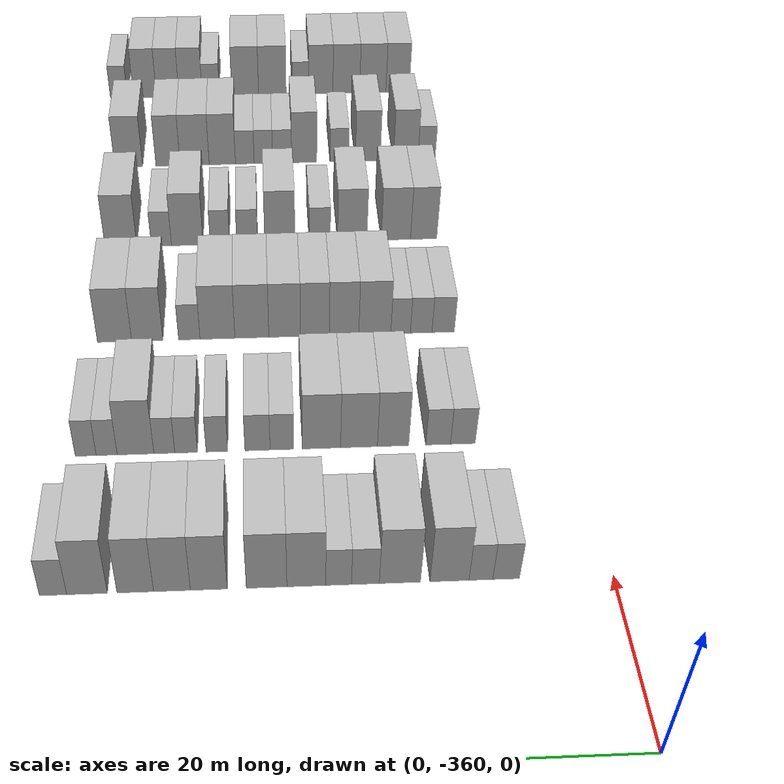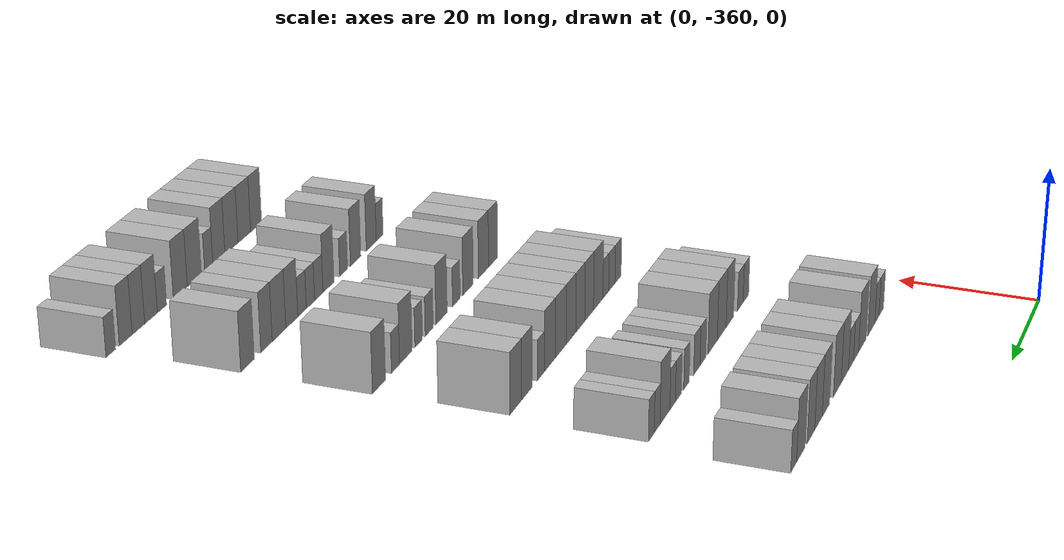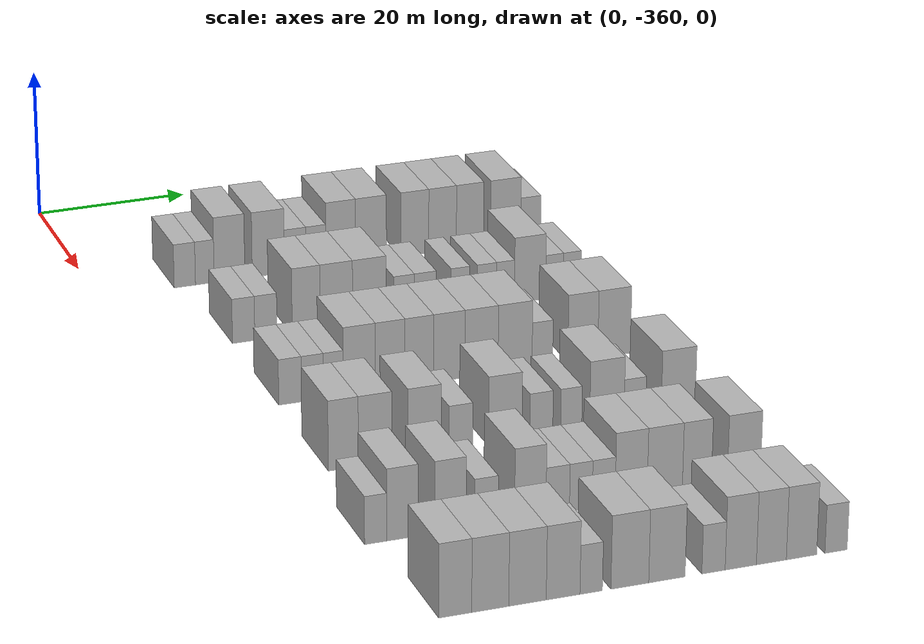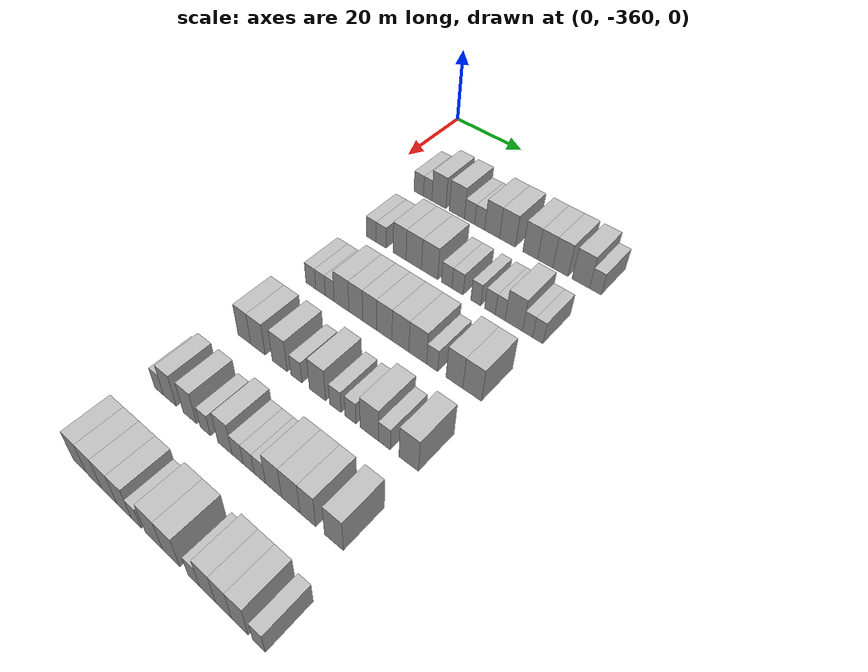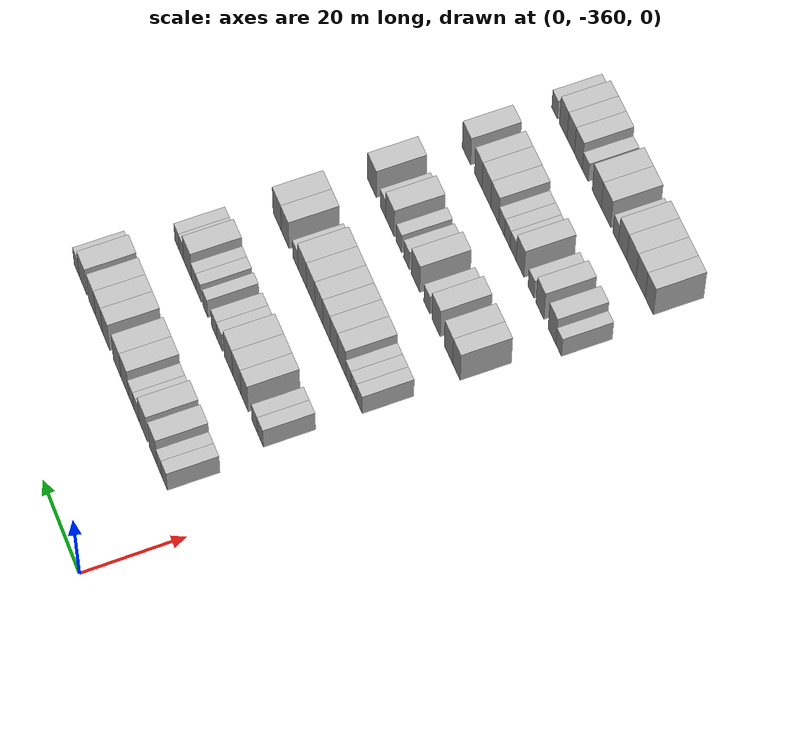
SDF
<sdf version="1.6">
 <world name="default">
  <model name="building_1">
   <static>1</static>
   <pose>25.0000 -348.5780 0 0.000000 0.000000 0.000000</pose>
   <link name="link">
    <pose>0 0 3.00 0 0 0</pose>
    <collision name="collision"><geometry><box><size>10.0000 2.8440 6.0000</size></box></geometry></collision>
    <visual name="visual">
     <cast_shadows>0</cast_shadows>
     <geometry><box><size>10.0000 2.8440 6.0000</size></box></geometry>
     <material>
      <script>
       <uri>model://HANNAS_wall/materials/scripts</uri>
       <uri>model://HANNAS_wall/materials/textures</uri>
       <name>vrc/HANNAS_wall</name>
      </script>
     </material>
    </visual>
   </link>
  </model>
  <model name="building_2">
   <static>1</static>
   <pose>25.0000 -345.8942 0 0.000000 0.000000 0.000000</pose>
   <link name="link">
    <pose>0 0 3.00 0 0 0</pose>
    <collision name="collision"><geometry><box><size>10.0000 2.5237 6.0000</size></box></geometry></collision>
    <visual name="visual">
     <cast_shadows>0</cast_shadows>
     <geometry><box><size>10.0000 2.5237 6.0000</size></box></geometry>
     <material>
      <script>
       <uri>model://HANNAS_wall/materials/scripts</uri>
       <uri>model://HANNAS_wall/materials/textures</uri>
       <name>vrc/HANNAS_wall</name>
      </script>
     </material>
    </visual>
   </link>
  </model>
  <model name="building_3">
   <static>1</static>
   <pose>25.0000 -342.5677 0 0.000000 0.000000 0.000000</pose>
   <link name="link">
    <pose>0 0 4.50 0 0 0</pose>
    <collision name="collision"><geometry><box><size>10.0000 4.1292 9.0000</size></box></geometry></collision>
    <visual name="visual">
     <cast_shadows>0</cast_shadows>
     <geometry><box><size>10.0000 4.1292 9.0000</size></box></geometry>
     <material>
      <script>
       <uri>model://HANNAS_wall/materials/scripts</uri>
       <uri>model://HANNAS_wall/materials/textures</uri>
       <name>vrc/HANNAS_wall</name>
      </script>
     </material>
    </visual>
   </link>
  </model>
  <model name="building_4">
   <static>1</static>
   <pose>25.0000 -337.3223 0 0.000000 0.000000 0.000000</pose>
   <link name="link">
    <pose>0 0 4.50 0 0 0</pose>
    <collision name="collision"><geometry><box><size>10.0000 4.3617 9.0000</size></box></geometry></collision>
    <visual name="visual">
     <cast_shadows>0</cast_shadows>
     <geometry><box><size>10.0000 4.3617 9.0000</size></box></geometry>
     <material>
      <script>
       <uri>model://HANNAS_wall/materials/scripts</uri>
       <uri>model://HANNAS_wall/materials/textures</uri>
       <name>vrc/HANNAS_wall</name>
      </script>
     </material>
    </visual>
   </link>
  </model>
  <model name="building_5">
   <static>1</static>
   <pose>25.0000 -333.6728 0 0.000000 0.000000 0.000000</pose>
   <link name="link">
    <pose>0 0 3.00 0 0 0</pose>
    <collision name="collision"><geometry><box><size>10.0000 2.9372 6.0000</size></box></geometry></collision>
    <visual name="visual">
     <cast_shadows>0</cast_shadows>
     <geometry><box><size>10.0000 2.9372 6.0000</size></box></geometry>
     <material>
      <script>
       <uri>model://HANNAS_wall/materials/scripts</uri>
       <uri>model://HANNAS_wall/materials/textures</uri>
       <name>vrc/HANNAS_wall</name>
      </script>
     </material>
    </visual>
   </link>
  </model>
  <model name="building_6">
   <static>1</static>
   <pose>25.0000 -330.8475 0 0.000000 0.000000 0.000000</pose>
   <link name="link">
    <pose>0 0 3.00 0 0 0</pose>
    <collision name="collision"><geometry><box><size>10.0000 2.7134 6.0000</size></box></geometry></collision>
    <visual name="visual">
     <cast_shadows>0</cast_shadows>
     <geometry><box><size>10.0000 2.7134 6.0000</size></box></geometry>
     <material>
      <script>
       <uri>model://HANNAS_wall/materials/scripts</uri>
       <uri>model://HANNAS_wall/materials/textures</uri>
       <name>vrc/HANNAS_wall</name>
      </script>
     </material>
    </visual>
   </link>
  </model>
  <model name="building_7">
   <static>1</static>
   <pose>25.0000 -327.4520 0 0.000000 0.000000 0.000000</pose>
   <link name="link">
    <pose>0 0 4.50 0 0 0</pose>
    <collision name="collision"><geometry><box><size>10.0000 4.0775 9.0000</size></box></geometry></collision>
    <visual name="visual">
     <cast_shadows>0</cast_shadows>
     <geometry><box><size>10.0000 4.0775 9.0000</size></box></geometry>
     <material>
      <script>
       <uri>model://HANNAS_wall/materials/scripts</uri>
       <uri>model://HANNAS_wall/materials/textures</uri>
       <name>vrc/HANNAS_wall</name>
      </script>
     </material>
    </visual>
   </link>
  </model>
  <model name="building_8">
   <static>1</static>
   <pose>25.0000 -323.2856 0 0.000000 0.000000 0.000000</pose>
   <link name="link">
    <pose>0 0 4.50 0 0 0</pose>
    <collision name="collision"><geometry><box><size>10.0000 4.2553 9.0000</size></box></geometry></collision>
    <visual name="visual">
     <cast_shadows>0</cast_shadows>
     <geometry><box><size>10.0000 4.2553 9.0000</size></box></geometry>
     <material>
      <script>
       <uri>model://HANNAS_wall/materials/scripts</uri>
       <uri>model://HANNAS_wall/materials/textures</uri>
       <name>vrc/HANNAS_wall</name>
      </script>
     </material>
    </visual>
   </link>
  </model>
  <model name="building_9">
   <static>1</static>
   <pose>25.0000 -317.2281 0 0.000000 0.000000 0.000000</pose>
   <link name="link">
    <pose>0 0 4.50 0 0 0</pose>
    <collision name="collision"><geometry><box><size>10.0000 3.8598 9.0000</size></box></geometry></collision>
    <visual name="visual">
     <cast_shadows>0</cast_shadows>
     <geometry><box><size>10.0000 3.8598 9.0000</size></box></geometry>
     <material>
      <script>
       <uri>model://HANNAS_wall/materials/scripts</uri>
       <uri>model://HANNAS_wall/materials/textures</uri>
       <name>vrc/HANNAS_wall</name>
      </script>
     </material>
    </visual>
   </link>
  </model>
  <model name="building_10">
   <static>1</static>
   <pose>25.0000 -313.3753 0 0.000000 0.000000 0.000000</pose>
   <link name="link">
    <pose>0 0 4.50 0 0 0</pose>
    <collision name="collision"><geometry><box><size>10.0000 3.8457 9.0000</size></box></geometry></collision>
    <visual name="visual">
     <cast_shadows>0</cast_shadows>
     <geometry><box><size>10.0000 3.8457 9.0000</size></box></geometry>
     <material>
      <script>
       <uri>model://HANNAS_wall/materials/scripts</uri>
       <uri>model://HANNAS_wall/materials/textures</uri>
       <name>vrc/HANNAS_wall</name>
      </script>
     </material>
    </visual>
   </link>
  </model>
  <model name="building_11">
   <static>1</static>
   <pose>25.0000 -309.5470 0 0.000000 0.000000 0.000000</pose>
   <link name="link">
    <pose>0 0 4.50 0 0 0</pose>
    <collision name="collision"><geometry><box><size>10.0000 3.8109 9.0000</size></box></geometry></collision>
    <visual name="visual">
     <cast_shadows>0</cast_shadows>
     <geometry><box><size>10.0000 3.8109 9.0000</size></box></geometry>
     <material>
      <script>
       <uri>model://HANNAS_wall/materials/scripts</uri>
       <uri>model://HANNAS_wall/materials/textures</uri>
       <name>vrc/HANNAS_wall</name>
      </script>
     </material>
    </visual>
   </link>
  </model>
  <model name="building_12">
   <static>1</static>
   <pose>25.0000 -304.5238 0 0.000000 0.000000 0.000000</pose>
   <link name="link">
    <pose>0 0 4.50 0 0 0</pose>
    <collision name="collision"><geometry><box><size>10.0000 4.2355 9.0000</size></box></geometry></collision>
    <visual name="visual">
     <cast_shadows>0</cast_shadows>
     <geometry><box><size>10.0000 4.2355 9.0000</size></box></geometry>
     <material>
      <script>
       <uri>model://HANNAS_wall/materials/scripts</uri>
       <uri>model://HANNAS_wall/materials/textures</uri>
       <name>vrc/HANNAS_wall</name>
      </script>
     </material>
    </visual>
   </link>
  </model>
  <model name="building_13">
   <static>1</static>
   <pose>25.0000 -300.9921 0 0.000000 0.000000 0.000000</pose>
   <link name="link">
    <pose>0 0 3.00 0 0 0</pose>
    <collision name="collision"><geometry><box><size>10.0000 2.8278 6.0000</size></box></geometry></collision>
    <visual name="visual">
     <cast_shadows>0</cast_shadows>
     <geometry><box><size>10.0000 2.8278 6.0000</size></box></geometry>
     <material>
      <script>
       <uri>model://HANNAS_wall/materials/scripts</uri>
       <uri>model://HANNAS_wall/materials/textures</uri>
       <name>vrc/HANNAS_wall</name>
      </script>
     </material>
    </visual>
   </link>
  </model>
  <model name="building_163">
   <static>1</static>
   <pose>44.0000 -346.5431 0 0.000000 0.000000 0.000000</pose>
   <link name="link">
    <pose>0 0 3.00 0 0 0</pose>
    <collision name="collision"><geometry><box><size>10.0000 2.9139 6.0000</size></box></geometry></collision>
    <visual name="visual">
     <cast_shadows>0</cast_shadows>
     <geometry><box><size>10.0000 2.9139 6.0000</size></box></geometry>
     <material>
      <script>
       <uri>model://HANNAS_wall/materials/scripts</uri>
       <uri>model://HANNAS_wall/materials/textures</uri>
       <name>vrc/HANNAS_wall</name>
      </script>
     </material>
    </visual>
   </link>
  </model>
  <model name="building_164">
   <static>1</static>
   <pose>44.0000 -343.6368 0 0.000000 0.000000 0.000000</pose>
   <link name="link">
    <pose>0 0 3.00 0 0 0</pose>
    <collision name="collision"><geometry><box><size>10.0000 2.8988 6.0000</size></box></geometry></collision>
    <visual name="visual">
     <cast_shadows>0</cast_shadows>
     <geometry><box><size>10.0000 2.8988 6.0000</size></box></geometry>
     <material>
      <script>
       <uri>model://HANNAS_wall/materials/scripts</uri>
       <uri>model://HANNAS_wall/materials/textures</uri>
       <name>vrc/HANNAS_wall</name>
      </script>
     </material>
    </visual>
   </link>
  </model>
  <model name="building_165">
   <static>1</static>
   <pose>44.0000 -338.3490 0 0.000000 0.000000 0.000000</pose>
   <link name="link">
    <pose>0 0 4.50 0 0 0</pose>
    <collision name="collision"><geometry><box><size>10.0000 3.6767 9.0000</size></box></geometry></collision>
    <visual name="visual">
     <cast_shadows>0</cast_shadows>
     <geometry><box><size>10.0000 3.6767 9.0000</size></box></geometry>
     <material>
      <script>
       <uri>model://HANNAS_wall/materials/scripts</uri>
       <uri>model://HANNAS_wall/materials/textures</uri>
       <name>vrc/HANNAS_wall</name>
      </script>
     </material>
    </visual>
   </link>
  </model>
  <model name="building_166">
   <static>1</static>
   <pose>44.0000 -334.3628 0 0.000000 0.000000 0.000000</pose>
   <link name="link">
    <pose>0 0 4.50 0 0 0</pose>
    <collision name="collision"><geometry><box><size>10.0000 4.2958 9.0000</size></box></geometry></collision>
    <visual name="visual">
     <cast_shadows>0</cast_shadows>
     <geometry><box><size>10.0000 4.2958 9.0000</size></box></geometry>
     <material>
      <script>
       <uri>model://HANNAS_wall/materials/scripts</uri>
       <uri>model://HANNAS_wall/materials/textures</uri>
       <name>vrc/HANNAS_wall</name>
      </script>
     </material>
    </visual>
   </link>
  </model>
  <model name="building_167">
   <static>1</static>
   <pose>44.0000 -329.9841 0 0.000000 0.000000 0.000000</pose>
   <link name="link">
    <pose>0 0 4.50 0 0 0</pose>
    <collision name="collision"><geometry><box><size>10.0000 4.4615 9.0000</size></box></geometry></collision>
    <visual name="visual">
     <cast_shadows>0</cast_shadows>
     <geometry><box><size>10.0000 4.4615 9.0000</size></box></geometry>
     <material>
      <script>
       <uri>model://HANNAS_wall/materials/scripts</uri>
       <uri>model://HANNAS_wall/materials/textures</uri>
       <name>vrc/HANNAS_wall</name>
      </script>
     </material>
    </visual>
   </link>
  </model>
  <model name="building_168">
   <static>1</static>
   <pose>44.0000 -325.3699 0 0.000000 0.000000 0.000000</pose>
   <link name="link">
    <pose>0 0 3.00 0 0 0</pose>
    <collision name="collision"><geometry><box><size>10.0000 2.7669 6.0000</size></box></geometry></collision>
    <visual name="visual">
     <cast_shadows>0</cast_shadows>
     <geometry><box><size>10.0000 2.7669 6.0000</size></box></geometry>
     <material>
      <script>
       <uri>model://HANNAS_wall/materials/scripts</uri>
       <uri>model://HANNAS_wall/materials/textures</uri>
       <name>vrc/HANNAS_wall</name>
      </script>
     </material>
    </visual>
   </link>
  </model>
  <model name="building_169">
   <static>1</static>
   <pose>44.0000 -322.5254 0 0.000000 0.000000 0.000000</pose>
   <link name="link">
    <pose>0 0 3.00 0 0 0</pose>
    <collision name="collision"><geometry><box><size>10.0000 2.9221 6.0000</size></box></geometry></collision>
    <visual name="visual">
     <cast_shadows>0</cast_shadows>
     <geometry><box><size>10.0000 2.9221 6.0000</size></box></geometry>
     <material>
      <script>
       <uri>model://HANNAS_wall/materials/scripts</uri>
       <uri>model://HANNAS_wall/materials/textures</uri>
       <name>vrc/HANNAS_wall</name>
      </script>
     </material>
    </visual>
   </link>
  </model>
  <model name="building_170">
   <static>1</static>
   <pose>44.0000 -317.8067 0 0.000000 0.000000 0.000000</pose>
   <link name="link">
    <pose>0 0 3.00 0 0 0</pose>
    <collision name="collision"><geometry><box><size>10.0000 2.5152 6.0000</size></box></geometry></collision>
    <visual name="visual">
     <cast_shadows>0</cast_shadows>
     <geometry><box><size>10.0000 2.5152 6.0000</size></box></geometry>
     <material>
      <script>
       <uri>model://HANNAS_wall/materials/scripts</uri>
       <uri>model://HANNAS_wall/materials/textures</uri>
       <name>vrc/HANNAS_wall</name>
      </script>
     </material>
    </visual>
   </link>
  </model>
  <model name="building_171">
   <static>1</static>
   <pose>44.0000 -314.2311 0 0.000000 0.000000 0.000000</pose>
   <link name="link">
    <pose>0 0 3.00 0 0 0</pose>
    <collision name="collision"><geometry><box><size>10.0000 2.6361 6.0000</size></box></geometry></collision>
    <visual name="visual">
     <cast_shadows>0</cast_shadows>
     <geometry><box><size>10.0000 2.6361 6.0000</size></box></geometry>
     <material>
      <script>
       <uri>model://HANNAS_wall/materials/scripts</uri>
       <uri>model://HANNAS_wall/materials/textures</uri>
       <name>vrc/HANNAS_wall</name>
      </script>
     </material>
    </visual>
   </link>
  </model>
  <model name="building_172">
   <static>1</static>
   <pose>44.0000 -311.7024 0 0.000000 0.000000 0.000000</pose>
   <link name="link">
    <pose>0 0 3.00 0 0 0</pose>
    <collision name="collision"><geometry><box><size>10.0000 2.4212 6.0000</size></box></geometry></collision>
    <visual name="visual">
     <cast_shadows>0</cast_shadows>
     <geometry><box><size>10.0000 2.4212 6.0000</size></box></geometry>
     <material>
      <script>
       <uri>model://HANNAS_wall/materials/scripts</uri>
       <uri>model://HANNAS_wall/materials/textures</uri>
       <name>vrc/HANNAS_wall</name>
      </script>
     </material>
    </visual>
   </link>
  </model>
  <model name="building_173">
   <static>1</static>
   <pose>44.0000 -308.3730 0 0.000000 0.000000 0.000000</pose>
   <link name="link">
    <pose>0 0 4.50 0 0 0</pose>
    <collision name="collision"><geometry><box><size>10.0000 4.2376 9.0000</size></box></geometry></collision>
    <visual name="visual">
     <cast_shadows>0</cast_shadows>
     <geometry><box><size>10.0000 4.2376 9.0000</size></box></geometry>
     <material>
      <script>
       <uri>model://HANNAS_wall/materials/scripts</uri>
       <uri>model://HANNAS_wall/materials/textures</uri>
       <name>vrc/HANNAS_wall</name>
      </script>
     </material>
    </visual>
   </link>
  </model>
  <model name="building_174">
   <static>1</static>
   <pose>44.0000 -305.0393 0 0.000000 0.000000 0.000000</pose>
   <link name="link">
    <pose>0 0 3.00 0 0 0</pose>
    <collision name="collision"><geometry><box><size>10.0000 2.4298 6.0000</size></box></geometry></collision>
    <visual name="visual">
     <cast_shadows>0</cast_shadows>
     <geometry><box><size>10.0000 2.4298 6.0000</size></box></geometry>
     <material>
      <script>
       <uri>model://HANNAS_wall/materials/scripts</uri>
       <uri>model://HANNAS_wall/materials/textures</uri>
       <name>vrc/HANNAS_wall</name>
      </script>
     </material>
    </visual>
   </link>
  </model>
  <model name="building_175">
   <static>1</static>
   <pose>44.0000 -302.6167 0 0.000000 0.000000 0.000000</pose>
   <link name="link">
    <pose>0 0 3.00 0 0 0</pose>
    <collision name="collision"><geometry><box><size>10.0000 2.4154 6.0000</size></box></geometry></collision>
    <visual name="visual">
     <cast_shadows>0</cast_shadows>
     <geometry><box><size>10.0000 2.4154 6.0000</size></box></geometry>
     <material>
      <script>
       <uri>model://HANNAS_wall/materials/scripts</uri>
       <uri>model://HANNAS_wall/materials/textures</uri>
       <name>vrc/HANNAS_wall</name>
      </script>
     </material>
    </visual>
   </link>
  </model>
  <model name="building_349">
   <static>1</static>
   <pose>63.0000 -346.5589 0 0.000000 0.000000 0.000000</pose>
   <link name="link">
    <pose>0 0 3.00 0 0 0</pose>
    <collision name="collision"><geometry><box><size>10.0000 2.8822 6.0000</size></box></geometry></collision>
    <visual name="visual">
     <cast_shadows>0</cast_shadows>
     <geometry><box><size>10.0000 2.8822 6.0000</size></box></geometry>
     <material>
      <script>
       <uri>model://HANNAS_wall/materials/scripts</uri>
       <uri>model://HANNAS_wall/materials/textures</uri>
       <name>vrc/HANNAS_wall</name>
      </script>
     </material>
    </visual>
   </link>
  </model>
  <model name="building_350">
   <static>1</static>
   <pose>63.0000 -343.7239 0 0.000000 0.000000 0.000000</pose>
   <link name="link">
    <pose>0 0 3.00 0 0 0</pose>
    <collision name="collision"><geometry><box><size>10.0000 2.7879 6.0000</size></box></geometry></collision>
    <visual name="visual">
     <cast_shadows>0</cast_shadows>
     <geometry><box><size>10.0000 2.7879 6.0000</size></box></geometry>
     <material>
      <script>
       <uri>model://HANNAS_wall/materials/scripts</uri>
       <uri>model://HANNAS_wall/materials/textures</uri>
       <name>vrc/HANNAS_wall</name>
      </script>
     </material>
    </visual>
   </link>
  </model>
  <model name="building_351">
   <static>1</static>
   <pose>63.0000 -341.0709 0 0.000000 0.000000 0.000000</pose>
   <link name="link">
    <pose>0 0 3.00 0 0 0</pose>
    <collision name="collision"><geometry><box><size>10.0000 2.5181 6.0000</size></box></geometry></collision>
    <visual name="visual">
     <cast_shadows>0</cast_shadows>
     <geometry><box><size>10.0000 2.5181 6.0000</size></box></geometry>
     <material>
      <script>
       <uri>model://HANNAS_wall/materials/scripts</uri>
       <uri>model://HANNAS_wall/materials/textures</uri>
       <name>vrc/HANNAS_wall</name>
      </script>
     </material>
    </visual>
   </link>
  </model>
  <model name="building_352">
   <static>1</static>
   <pose>63.0000 -337.7513 0 0.000000 0.000000 0.000000</pose>
   <link name="link">
    <pose>0 0 4.50 0 0 0</pose>
    <collision name="collision"><geometry><box><size>10.0000 4.1213 9.0000</size></box></geometry></collision>
    <visual name="visual">
     <cast_shadows>0</cast_shadows>
     <geometry><box><size>10.0000 4.1213 9.0000</size></box></geometry>
     <material>
      <script>
       <uri>model://HANNAS_wall/materials/scripts</uri>
       <uri>model://HANNAS_wall/materials/textures</uri>
       <name>vrc/HANNAS_wall</name>
      </script>
     </material>
    </visual>
   </link>
  </model>
  <model name="building_353">
   <static>1</static>
   <pose>63.0000 -333.7960 0 0.000000 0.000000 0.000000</pose>
   <link name="link">
    <pose>0 0 4.50 0 0 0</pose>
    <collision name="collision"><geometry><box><size>10.0000 3.7892 9.0000</size></box></geometry></collision>
    <visual name="visual">
     <cast_shadows>0</cast_shadows>
     <geometry><box><size>10.0000 3.7892 9.0000</size></box></geometry>
     <material>
      <script>
       <uri>model://HANNAS_wall/materials/scripts</uri>
       <uri>model://HANNAS_wall/materials/textures</uri>
       <name>vrc/HANNAS_wall</name>
      </script>
     </material>
    </visual>
   </link>
  </model>
  <model name="building_354">
   <static>1</static>
   <pose>63.0000 -330.0462 0 0.000000 0.000000 0.000000</pose>
   <link name="link">
    <pose>0 0 4.50 0 0 0</pose>
    <collision name="collision"><geometry><box><size>10.0000 3.7105 9.0000</size></box></geometry></collision>
    <visual name="visual">
     <cast_shadows>0</cast_shadows>
     <geometry><box><size>10.0000 3.7105 9.0000</size></box></geometry>
     <material>
      <script>
       <uri>model://HANNAS_wall/materials/scripts</uri>
       <uri>model://HANNAS_wall/materials/textures</uri>
       <name>vrc/HANNAS_wall</name>
      </script>
     </material>
    </visual>
   </link>
  </model>
  <model name="building_355">
   <static>1</static>
   <pose>63.0000 -326.1734 0 0.000000 0.000000 0.000000</pose>
   <link name="link">
    <pose>0 0 4.50 0 0 0</pose>
    <collision name="collision"><geometry><box><size>10.0000 4.0352 9.0000</size></box></geometry></collision>
    <visual name="visual">
     <cast_shadows>0</cast_shadows>
     <geometry><box><size>10.0000 4.0352 9.0000</size></box></geometry>
     <material>
      <script>
       <uri>model://HANNAS_wall/materials/scripts</uri>
       <uri>model://HANNAS_wall/materials/textures</uri>
       <name>vrc/HANNAS_wall</name>
      </script>
     </material>
    </visual>
   </link>
  </model>
  <model name="building_356">
   <static>1</static>
   <pose>63.0000 -321.9906 0 0.000000 0.000000 0.000000</pose>
   <link name="link">
    <pose>0 0 4.50 0 0 0</pose>
    <collision name="collision"><geometry><box><size>10.0000 4.3304 9.0000</size></box></geometry></collision>
    <visual name="visual">
     <cast_shadows>0</cast_shadows>
     <geometry><box><size>10.0000 4.3304 9.0000</size></box></geometry>
     <material>
      <script>
       <uri>model://HANNAS_wall/materials/scripts</uri>
       <uri>model://HANNAS_wall/materials/textures</uri>
       <name>vrc/HANNAS_wall</name>
      </script>
     </material>
    </visual>
   </link>
  </model>
  <model name="building_357">
   <static>1</static>
   <pose>63.0000 -317.5995 0 0.000000 0.000000 0.000000</pose>
   <link name="link">
    <pose>0 0 4.50 0 0 0</pose>
    <collision name="collision"><geometry><box><size>10.0000 4.4518 9.0000</size></box></geometry></collision>
    <visual name="visual">
     <cast_shadows>0</cast_shadows>
     <geometry><box><size>10.0000 4.4518 9.0000</size></box></geometry>
     <material>
      <script>
       <uri>model://HANNAS_wall/materials/scripts</uri>
       <uri>model://HANNAS_wall/materials/textures</uri>
       <name>vrc/HANNAS_wall</name>
      </script>
     </material>
    </visual>
   </link>
  </model>
  <model name="building_358">
   <static>1</static>
   <pose>63.0000 -314.0114 0 0.000000 0.000000 0.000000</pose>
   <link name="link">
    <pose>0 0 3.00 0 0 0</pose>
    <collision name="collision"><geometry><box><size>10.0000 2.7244 6.0000</size></box></geometry></collision>
    <visual name="visual">
     <cast_shadows>0</cast_shadows>
     <geometry><box><size>10.0000 2.7244 6.0000</size></box></geometry>
     <material>
      <script>
       <uri>model://HANNAS_wall/materials/scripts</uri>
       <uri>model://HANNAS_wall/materials/textures</uri>
       <name>vrc/HANNAS_wall</name>
      </script>
     </material>
    </visual>
   </link>
  </model>
  <model name="building_359">
   <static>1</static>
   <pose>63.0000 -308.6573 0 0.000000 0.000000 0.000000</pose>
   <link name="link">
    <pose>0 0 4.50 0 0 0</pose>
    <collision name="collision"><geometry><box><size>10.0000 3.9838 9.0000</size></box></geometry></collision>
    <visual name="visual">
     <cast_shadows>0</cast_shadows>
     <geometry><box><size>10.0000 3.9838 9.0000</size></box></geometry>
     <material>
      <script>
       <uri>model://HANNAS_wall/materials/scripts</uri>
       <uri>model://HANNAS_wall/materials/textures</uri>
       <name>vrc/HANNAS_wall</name>
      </script>
     </material>
    </visual>
   </link>
  </model>
  <model name="building_360">
   <static>1</static>
   <pose>63.0000 -304.4983 0 0.000000 0.000000 0.000000</pose>
   <link name="link">
    <pose>0 0 4.50 0 0 0</pose>
    <collision name="collision"><geometry><box><size>10.0000 4.3343 9.0000</size></box></geometry></collision>
    <visual name="visual">
     <cast_shadows>0</cast_shadows>
     <geometry><box><size>10.0000 4.3343 9.0000</size></box></geometry>
     <material>
      <script>
       <uri>model://HANNAS_wall/materials/scripts</uri>
       <uri>model://HANNAS_wall/materials/textures</uri>
       <name>vrc/HANNAS_wall</name>
      </script>
     </material>
    </visual>
   </link>
  </model>
  <model name="building_522">
   <static>1</static>
   <pose>82.0000 -346.1519 0 0.000000 0.000000 0.000000</pose>
   <link name="link">
    <pose>0 0 4.50 0 0 0</pose>
    <collision name="collision"><geometry><box><size>10.0000 3.6962 9.0000</size></box></geometry></collision>
    <visual name="visual">
     <cast_shadows>0</cast_shadows>
     <geometry><box><size>10.0000 3.6962 9.0000</size></box></geometry>
     <material>
      <script>
       <uri>model://HANNAS_wall/materials/scripts</uri>
       <uri>model://HANNAS_wall/materials/textures</uri>
       <name>vrc/HANNAS_wall</name>
      </script>
     </material>
    </visual>
   </link>
  </model>
  <model name="building_523">
   <static>1</static>
   <pose>82.0000 -342.2464 0 0.000000 0.000000 0.000000</pose>
   <link name="link">
    <pose>0 0 4.50 0 0 0</pose>
    <collision name="collision"><geometry><box><size>10.0000 4.1149 9.0000</size></box></geometry></collision>
    <visual name="visual">
     <cast_shadows>0</cast_shadows>
     <geometry><box><size>10.0000 4.1149 9.0000</size></box></geometry>
     <material>
      <script>
       <uri>model://HANNAS_wall/materials/scripts</uri>
       <uri>model://HANNAS_wall/materials/textures</uri>
       <name>vrc/HANNAS_wall</name>
      </script>
     </material>
    </visual>
   </link>
  </model>
  <model name="building_524">
   <static>1</static>
   <pose>82.0000 -336.1265 0 0.000000 0.000000 0.000000</pose>
   <link name="link">
    <pose>0 0 4.50 0 0 0</pose>
    <collision name="collision"><geometry><box><size>10.0000 4.1247 9.0000</size></box></geometry></collision>
    <visual name="visual">
     <cast_shadows>0</cast_shadows>
     <geometry><box><size>10.0000 4.1247 9.0000</size></box></geometry>
     <material>
      <script>
       <uri>model://HANNAS_wall/materials/scripts</uri>
       <uri>model://HANNAS_wall/materials/textures</uri>
       <name>vrc/HANNAS_wall</name>
      </script>
     </material>
    </visual>
   </link>
  </model>
  <model name="building_525">
   <static>1</static>
   <pose>82.0000 -331.5944 0 0.000000 0.000000 0.000000</pose>
   <link name="link">
    <pose>0 0 3.00 0 0 0</pose>
    <collision name="collision"><geometry><box><size>10.0000 2.9394 6.0000</size></box></geometry></collision>
    <visual name="visual">
     <cast_shadows>0</cast_shadows>
     <geometry><box><size>10.0000 2.9394 6.0000</size></box></geometry>
     <material>
      <script>
       <uri>model://HANNAS_wall/materials/scripts</uri>
       <uri>model://HANNAS_wall/materials/textures</uri>
       <name>vrc/HANNAS_wall</name>
      </script>
     </material>
    </visual>
   </link>
  </model>
  <model name="building_526">
   <static>1</static>
   <pose>82.0000 -326.0249 0 0.000000 0.000000 0.000000</pose>
   <link name="link">
    <pose>0 0 4.50 0 0 0</pose>
    <collision name="collision"><geometry><box><size>10.0000 4.1996 9.0000</size></box></geometry></collision>
    <visual name="visual">
     <cast_shadows>0</cast_shadows>
     <geometry><box><size>10.0000 4.1996 9.0000</size></box></geometry>
     <material>
      <script>
       <uri>model://HANNAS_wall/materials/scripts</uri>
       <uri>model://HANNAS_wall/materials/textures</uri>
       <name>vrc/HANNAS_wall</name>
      </script>
     </material>
    </visual>
   </link>
  </model>
  <model name="building_527">
   <static>1</static>
   <pose>82.0000 -321.4753 0 0.000000 0.000000 0.000000</pose>
   <link name="link">
    <pose>0 0 3.00 0 0 0</pose>
    <collision name="collision"><geometry><box><size>10.0000 2.8997 6.0000</size></box></geometry></collision>
    <visual name="visual">
     <cast_shadows>0</cast_shadows>
     <geometry><box><size>10.0000 2.8997 6.0000</size></box></geometry>
     <material>
      <script>
       <uri>model://HANNAS_wall/materials/scripts</uri>
       <uri>model://HANNAS_wall/materials/textures</uri>
       <name>vrc/HANNAS_wall</name>
      </script>
     </material>
    </visual>
   </link>
  </model>
  <model name="building_528">
   <static>1</static>
   <pose>82.0000 -317.6813 0 0.000000 0.000000 0.000000</pose>
   <link name="link">
    <pose>0 0 3.00 0 0 0</pose>
    <collision name="collision"><geometry><box><size>10.0000 2.6884 6.0000</size></box></geometry></collision>
    <visual name="visual">
     <cast_shadows>0</cast_shadows>
     <geometry><box><size>10.0000 2.6884 6.0000</size></box></geometry>
     <material>
      <script>
       <uri>model://HANNAS_wall/materials/scripts</uri>
       <uri>model://HANNAS_wall/materials/textures</uri>
       <name>vrc/HANNAS_wall</name>
      </script>
     </material>
    </visual>
   </link>
  </model>
  <model name="building_529">
   <static>1</static>
   <pose>82.0000 -313.1381 0 0.000000 0.000000 0.000000</pose>
   <link name="link">
    <pose>0 0 4.50 0 0 0</pose>
    <collision name="collision"><geometry><box><size>10.0000 4.3979 9.0000</size></box></geometry></collision>
    <visual name="visual">
     <cast_shadows>0</cast_shadows>
     <geometry><box><size>10.0000 4.3979 9.0000</size></box></geometry>
     <material>
      <script>
       <uri>model://HANNAS_wall/materials/scripts</uri>
       <uri>model://HANNAS_wall/materials/textures</uri>
       <name>vrc/HANNAS_wall</name>
      </script>
     </material>
    </visual>
   </link>
  </model>
  <model name="building_530">
   <static>1</static>
   <pose>82.0000 -309.5444 0 0.000000 0.000000 0.000000</pose>
   <link name="link">
    <pose>0 0 3.00 0 0 0</pose>
    <collision name="collision"><geometry><box><size>10.0000 2.7895 6.0000</size></box></geometry></collision>
    <visual name="visual">
     <cast_shadows>0</cast_shadows>
     <geometry><box><size>10.0000 2.7895 6.0000</size></box></geometry>
     <material>
      <script>
       <uri>model://HANNAS_wall/materials/scripts</uri>
       <uri>model://HANNAS_wall/materials/textures</uri>
       <name>vrc/HANNAS_wall</name>
      </script>
     </material>
    </visual>
   </link>
  </model>
  <model name="building_531">
   <static>1</static>
   <pose>82.0000 -303.9486 0 0.000000 0.000000 0.000000</pose>
   <link name="link">
    <pose>0 0 4.50 0 0 0</pose>
    <collision name="collision"><geometry><box><size>10.0000 4.4021 9.0000</size></box></geometry></collision>
    <visual name="visual">
     <cast_shadows>0</cast_shadows>
     <geometry><box><size>10.0000 4.4021 9.0000</size></box></geometry>
     <material>
      <script>
       <uri>model://HANNAS_wall/materials/scripts</uri>
       <uri>model://HANNAS_wall/materials/textures</uri>
       <name>vrc/HANNAS_wall</name>
      </script>
     </material>
    </visual>
   </link>
  </model>
  <model name="building_671">
   <static>1</static>
   <pose>101.0000 -348.6920 0 0.000000 0.000000 0.000000</pose>
   <link name="link">
    <pose>0 0 3.00 0 0 0</pose>
    <collision name="collision"><geometry><box><size>10.0000 2.6159 6.0000</size></box></geometry></collision>
    <visual name="visual">
     <cast_shadows>0</cast_shadows>
     <geometry><box><size>10.0000 2.6159 6.0000</size></box></geometry>
     <material>
      <script>
       <uri>model://HANNAS_wall/materials/scripts</uri>
       <uri>model://HANNAS_wall/materials/textures</uri>
       <name>vrc/HANNAS_wall</name>
      </script>
     </material>
    </visual>
   </link>
  </model>
  <model name="building_672">
   <static>1</static>
   <pose>101.0000 -345.5213 0 0.000000 0.000000 0.000000</pose>
   <link name="link">
    <pose>0 0 4.50 0 0 0</pose>
    <collision name="collision"><geometry><box><size>10.0000 3.7256 9.0000</size></box></geometry></collision>
    <visual name="visual">
     <cast_shadows>0</cast_shadows>
     <geometry><box><size>10.0000 3.7256 9.0000</size></box></geometry>
     <material>
      <script>
       <uri>model://HANNAS_wall/materials/scripts</uri>
       <uri>model://HANNAS_wall/materials/textures</uri>
       <name>vrc/HANNAS_wall</name>
      </script>
     </material>
    </visual>
   </link>
  </model>
  <model name="building_673">
   <static>1</static>
   <pose>101.0000 -339.7689 0 0.000000 0.000000 0.000000</pose>
   <link name="link">
    <pose>0 0 4.50 0 0 0</pose>
    <collision name="collision"><geometry><box><size>10.0000 3.7791 9.0000</size></box></geometry></collision>
    <visual name="visual">
     <cast_shadows>0</cast_shadows>
     <geometry><box><size>10.0000 3.7791 9.0000</size></box></geometry>
     <material>
      <script>
       <uri>model://HANNAS_wall/materials/scripts</uri>
       <uri>model://HANNAS_wall/materials/textures</uri>
       <name>vrc/HANNAS_wall</name>
      </script>
     </material>
    </visual>
   </link>
  </model>
  <model name="building_674">
   <static>1</static>
   <pose>101.0000 -335.4640 0 0.000000 0.000000 0.000000</pose>
   <link name="link">
    <pose>0 0 3.00 0 0 0</pose>
    <collision name="collision"><geometry><box><size>10.0000 2.8307 6.0000</size></box></geometry></collision>
    <visual name="visual">
     <cast_shadows>0</cast_shadows>
     <geometry><box><size>10.0000 2.8307 6.0000</size></box></geometry>
     <material>
      <script>
       <uri>model://HANNAS_wall/materials/scripts</uri>
       <uri>model://HANNAS_wall/materials/textures</uri>
       <name>vrc/HANNAS_wall</name>
      </script>
     </material>
    </visual>
   </link>
  </model>
  <model name="building_675">
   <static>1</static>
   <pose>101.0000 -330.1428 0 0.000000 0.000000 0.000000</pose>
   <link name="link">
    <pose>0 0 4.50 0 0 0</pose>
    <collision name="collision"><geometry><box><size>10.0000 3.8118 9.0000</size></box></geometry></collision>
    <visual name="visual">
     <cast_shadows>0</cast_shadows>
     <geometry><box><size>10.0000 3.8118 9.0000</size></box></geometry>
     <material>
      <script>
       <uri>model://HANNAS_wall/materials/scripts</uri>
       <uri>model://HANNAS_wall/materials/textures</uri>
       <name>vrc/HANNAS_wall</name>
      </script>
     </material>
    </visual>
   </link>
  </model>
  <model name="building_676">
   <static>1</static>
   <pose>101.0000 -326.7993 0 0.000000 0.000000 0.000000</pose>
   <link name="link">
    <pose>0 0 3.00 0 0 0</pose>
    <collision name="collision"><geometry><box><size>10.0000 2.8752 6.0000</size></box></geometry></collision>
    <visual name="visual">
     <cast_shadows>0</cast_shadows>
     <geometry><box><size>10.0000 2.8752 6.0000</size></box></geometry>
     <material>
      <script>
       <uri>model://HANNAS_wall/materials/scripts</uri>
       <uri>model://HANNAS_wall/materials/textures</uri>
       <name>vrc/HANNAS_wall</name>
      </script>
     </material>
    </visual>
   </link>
  </model>
  <model name="building_677">
   <static>1</static>
   <pose>101.0000 -323.9732 0 0.000000 0.000000 0.000000</pose>
   <link name="link">
    <pose>0 0 3.00 0 0 0</pose>
    <collision name="collision"><geometry><box><size>10.0000 2.7770 6.0000</size></box></geometry></collision>
    <visual name="visual">
     <cast_shadows>0</cast_shadows>
     <geometry><box><size>10.0000 2.7770 6.0000</size></box></geometry>
     <material>
      <script>
       <uri>model://HANNAS_wall/materials/scripts</uri>
       <uri>model://HANNAS_wall/materials/textures</uri>
       <name>vrc/HANNAS_wall</name>
      </script>
     </material>
    </visual>
   </link>
  </model>
  <model name="building_678">
   <static>1</static>
   <pose>101.0000 -321.1760 0 0.000000 0.000000 0.000000</pose>
   <link name="link">
    <pose>0 0 3.00 0 0 0</pose>
    <collision name="collision"><geometry><box><size>10.0000 2.8174 6.0000</size></box></geometry></collision>
    <visual name="visual">
     <cast_shadows>0</cast_shadows>
     <geometry><box><size>10.0000 2.8174 6.0000</size></box></geometry>
     <material>
      <script>
       <uri>model://HANNAS_wall/materials/scripts</uri>
       <uri>model://HANNAS_wall/materials/textures</uri>
       <name>vrc/HANNAS_wall</name>
      </script>
     </material>
    </visual>
   </link>
  </model>
  <model name="building_679">
   <static>1</static>
   <pose>101.0000 -317.7909 0 0.000000 0.000000 0.000000</pose>
   <link name="link">
    <pose>0 0 4.50 0 0 0</pose>
    <collision name="collision"><geometry><box><size>10.0000 3.9529 9.0000</size></box></geometry></collision>
    <visual name="visual">
     <cast_shadows>0</cast_shadows>
     <geometry><box><size>10.0000 3.9529 9.0000</size></box></geometry>
     <material>
      <script>
       <uri>model://HANNAS_wall/materials/scripts</uri>
       <uri>model://HANNAS_wall/materials/textures</uri>
       <name>vrc/HANNAS_wall</name>
      </script>
     </material>
    </visual>
   </link>
  </model>
  <model name="building_680">
   <static>1</static>
   <pose>101.0000 -313.6275 0 0.000000 0.000000 0.000000</pose>
   <link name="link">
    <pose>0 0 4.50 0 0 0</pose>
    <collision name="collision"><geometry><box><size>10.0000 4.3739 9.0000</size></box></geometry></collision>
    <visual name="visual">
     <cast_shadows>0</cast_shadows>
     <geometry><box><size>10.0000 4.3739 9.0000</size></box></geometry>
     <material>
      <script>
       <uri>model://HANNAS_wall/materials/scripts</uri>
       <uri>model://HANNAS_wall/materials/textures</uri>
       <name>vrc/HANNAS_wall</name>
      </script>
     </material>
    </visual>
   </link>
  </model>
  <model name="building_681">
   <static>1</static>
   <pose>101.0000 -309.6332 0 0.000000 0.000000 0.000000</pose>
   <link name="link">
    <pose>0 0 4.50 0 0 0</pose>
    <collision name="collision"><geometry><box><size>10.0000 3.6146 9.0000</size></box></geometry></collision>
    <visual name="visual">
     <cast_shadows>0</cast_shadows>
     <geometry><box><size>10.0000 3.6146 9.0000</size></box></geometry>
     <material>
      <script>
       <uri>model://HANNAS_wall/materials/scripts</uri>
       <uri>model://HANNAS_wall/materials/textures</uri>
       <name>vrc/HANNAS_wall</name>
      </script>
     </material>
    </visual>
   </link>
  </model>
  <model name="building_682">
   <static>1</static>
   <pose>101.0000 -303.7403 0 0.000000 0.000000 0.000000</pose>
   <link name="link">
    <pose>0 0 4.50 0 0 0</pose>
    <collision name="collision"><geometry><box><size>10.0000 4.1713 9.0000</size></box></geometry></collision>
    <visual name="visual">
     <cast_shadows>0</cast_shadows>
     <geometry><box><size>10.0000 4.1713 9.0000</size></box></geometry>
     <material>
      <script>
       <uri>model://HANNAS_wall/materials/scripts</uri>
       <uri>model://HANNAS_wall/materials/textures</uri>
       <name>vrc/HANNAS_wall</name>
      </script>
     </material>
    </visual>
   </link>
  </model>
  <model name="building_845">
   <static>1</static>
   <pose>120.0000 -346.0983 0 0.000000 0.000000 0.000000</pose>
   <link name="link">
    <pose>0 0 4.50 0 0 0</pose>
    <collision name="collision"><geometry><box><size>10.0000 3.8035 9.0000</size></box></geometry></collision>
    <visual name="visual">
     <cast_shadows>0</cast_shadows>
     <geometry><box><size>10.0000 3.8035 9.0000</size></box></geometry>
     <material>
      <script>
       <uri>model://HANNAS_wall/materials/scripts</uri>
       <uri>model://HANNAS_wall/materials/textures</uri>
       <name>vrc/HANNAS_wall</name>
      </script>
     </material>
    </visual>
   </link>
  </model>
  <model name="building_846">
   <static>1</static>
   <pose>120.0000 -342.0518 0 0.000000 0.000000 0.000000</pose>
   <link name="link">
    <pose>0 0 4.50 0 0 0</pose>
    <collision name="collision"><geometry><box><size>10.0000 4.2895 9.0000</size></box></geometry></collision>
    <visual name="visual">
     <cast_shadows>0</cast_shadows>
     <geometry><box><size>10.0000 4.2895 9.0000</size></box></geometry>
     <material>
      <script>
       <uri>model://HANNAS_wall/materials/scripts</uri>
       <uri>model://HANNAS_wall/materials/textures</uri>
       <name>vrc/HANNAS_wall</name>
      </script>
     </material>
    </visual>
   </link>
  </model>
  <model name="building_847">
   <static>1</static>
   <pose>120.0000 -337.7242 0 0.000000 0.000000 0.000000</pose>
   <link name="link">
    <pose>0 0 4.50 0 0 0</pose>
    <collision name="collision"><geometry><box><size>10.0000 4.3656 9.0000</size></box></geometry></collision>
    <visual name="visual">
     <cast_shadows>0</cast_shadows>
     <geometry><box><size>10.0000 4.3656 9.0000</size></box></geometry>
     <material>
      <script>
       <uri>model://HANNAS_wall/materials/scripts</uri>
       <uri>model://HANNAS_wall/materials/textures</uri>
       <name>vrc/HANNAS_wall</name>
      </script>
     </material>
    </visual>
   </link>
  </model>
  <model name="building_848">
   <static>1</static>
   <pose>120.0000 -333.5657 0 0.000000 0.000000 0.000000</pose>
   <link name="link">
    <pose>0 0 4.50 0 0 0</pose>
    <collision name="collision"><geometry><box><size>10.0000 3.9514 9.0000</size></box></geometry></collision>
    <visual name="visual">
     <cast_shadows>0</cast_shadows>
     <geometry><box><size>10.0000 3.9514 9.0000</size></box></geometry>
     <material>
      <script>
       <uri>model://HANNAS_wall/materials/scripts</uri>
       <uri>model://HANNAS_wall/materials/textures</uri>
       <name>vrc/HANNAS_wall</name>
      </script>
     </material>
    </visual>
   </link>
  </model>
  <model name="building_849">
   <static>1</static>
   <pose>120.0000 -330.2688 0 0.000000 0.000000 0.000000</pose>
   <link name="link">
    <pose>0 0 3.00 0 0 0</pose>
    <collision name="collision"><geometry><box><size>10.0000 2.6425 6.0000</size></box></geometry></collision>
    <visual name="visual">
     <cast_shadows>0</cast_shadows>
     <geometry><box><size>10.0000 2.6425 6.0000</size></box></geometry>
     <material>
      <script>
       <uri>model://HANNAS_wall/materials/scripts</uri>
       <uri>model://HANNAS_wall/materials/textures</uri>
       <name>vrc/HANNAS_wall</name>
      </script>
     </material>
    </visual>
   </link>
  </model>
  <model name="building_850">
   <static>1</static>
   <pose>120.0000 -325.7068 0 0.000000 0.000000 0.000000</pose>
   <link name="link">
    <pose>0 0 4.50 0 0 0</pose>
    <collision name="collision"><geometry><box><size>10.0000 4.4814 9.0000</size></box></geometry></collision>
    <visual name="visual">
     <cast_shadows>0</cast_shadows>
     <geometry><box><size>10.0000 4.4814 9.0000</size></box></geometry>
     <material>
      <script>
       <uri>model://HANNAS_wall/materials/scripts</uri>
       <uri>model://HANNAS_wall/materials/textures</uri>
       <name>vrc/HANNAS_wall</name>
      </script>
     </material>
    </visual>
   </link>
  </model>
  <model name="building_851">
   <static>1</static>
   <pose>120.0000 -321.2972 0 0.000000 0.000000 0.000000</pose>
   <link name="link">
    <pose>0 0 4.50 0 0 0</pose>
    <collision name="collision"><geometry><box><size>10.0000 4.3378 9.0000</size></box></geometry></collision>
    <visual name="visual">
     <cast_shadows>0</cast_shadows>
     <geometry><box><size>10.0000 4.3378 9.0000</size></box></geometry>
     <material>
      <script>
       <uri>model://HANNAS_wall/materials/scripts</uri>
       <uri>model://HANNAS_wall/materials/textures</uri>
       <name>vrc/HANNAS_wall</name>
      </script>
     </material>
    </visual>
   </link>
  </model>
  <model name="building_852">
   <static>1</static>
   <pose>120.0000 -315.7304 0 0.000000 0.000000 0.000000</pose>
   <link name="link">
    <pose>0 0 3.00 0 0 0</pose>
    <collision name="collision"><geometry><box><size>10.0000 2.7958 6.0000</size></box></geometry></collision>
    <visual name="visual">
     <cast_shadows>0</cast_shadows>
     <geometry><box><size>10.0000 2.7958 6.0000</size></box></geometry>
     <material>
      <script>
       <uri>model://HANNAS_wall/materials/scripts</uri>
       <uri>model://HANNAS_wall/materials/textures</uri>
       <name>vrc/HANNAS_wall</name>
      </script>
     </material>
    </visual>
   </link>
  </model>
  <model name="building_853">
   <static>1</static>
   <pose>120.0000 -312.4469 0 0.000000 0.000000 0.000000</pose>
   <link name="link">
    <pose>0 0 4.50 0 0 0</pose>
    <collision name="collision"><geometry><box><size>10.0000 3.7712 9.0000</size></box></geometry></collision>
    <visual name="visual">
     <cast_shadows>0</cast_shadows>
     <geometry><box><size>10.0000 3.7712 9.0000</size></box></geometry>
     <material>
      <script>
       <uri>model://HANNAS_wall/materials/scripts</uri>
       <uri>model://HANNAS_wall/materials/textures</uri>
       <name>vrc/HANNAS_wall</name>
      </script>
     </material>
    </visual>
   </link>
  </model>
  <model name="building_854">
   <static>1</static>
   <pose>120.0000 -308.7487 0 0.000000 0.000000 0.000000</pose>
   <link name="link">
    <pose>0 0 4.50 0 0 0</pose>
    <collision name="collision"><geometry><box><size>10.0000 3.6252 9.0000</size></box></geometry></collision>
    <visual name="visual">
     <cast_shadows>0</cast_shadows>
     <geometry><box><size>10.0000 3.6252 9.0000</size></box></geometry>
     <material>
      <script>
       <uri>model://HANNAS_wall/materials/scripts</uri>
       <uri>model://HANNAS_wall/materials/textures</uri>
       <name>vrc/HANNAS_wall</name>
      </script>
     </material>
    </visual>
   </link>
  </model>
  <model name="building_855">
   <static>1</static>
   <pose>120.0000 -305.0847 0 0.000000 0.000000 0.000000</pose>
   <link name="link">
    <pose>0 0 4.50 0 0 0</pose>
    <collision name="collision"><geometry><box><size>10.0000 3.7028 9.0000</size></box></geometry></collision>
    <visual name="visual">
     <cast_shadows>0</cast_shadows>
     <geometry><box><size>10.0000 3.7028 9.0000</size></box></geometry>
     <material>
      <script>
       <uri>model://HANNAS_wall/materials/scripts</uri>
       <uri>model://HANNAS_wall/materials/textures</uri>
       <name>vrc/HANNAS_wall</name>
      </script>
     </material>
    </visual>
   </link>
  </model>
  <model name="building_856">
   <static>1</static>
   <pose>120.0000 -300.8704 0 0.000000 0.000000 0.000000</pose>
   <link name="link">
    <pose>0 0 3.00 0 0 0</pose>
    <collision name="collision"><geometry><box><size>10.0000 2.7258 6.0000</size></box></geometry></collision>
    <visual name="visual">
     <cast_shadows>0</cast_shadows>
     <geometry><box><size>10.0000 2.7258 6.0000</size></box></geometry>
     <material>
      <script>
       <uri>model://HANNAS_wall/materials/scripts</uri>
       <uri>model://HANNAS_wall/materials/textures</uri>
       <name>vrc/HANNAS_wall</name>
      </script>
     </material>
    </visual>
   </link>
  </model>
 </world>
</sdf>
